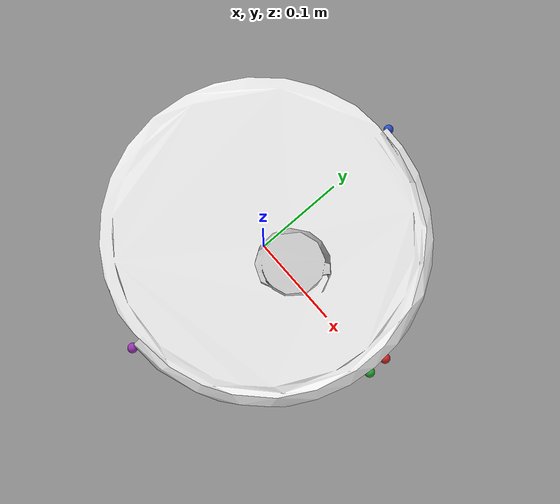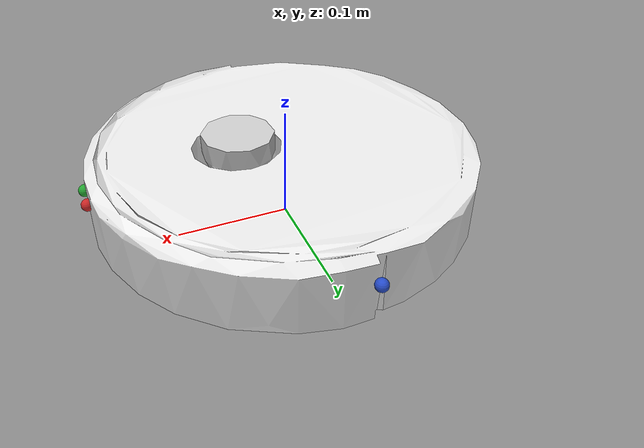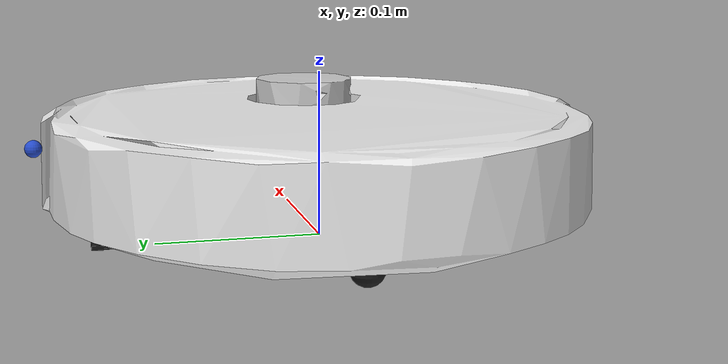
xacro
<?xml version="1.0"?>
<robot xmlns:controller="http://playerstage.sourceforge.net/gazebo/xmlschema/#controller" xmlns:interface="http://playerstage.sourceforge.net/gazebo/xmlschema/#interface" xmlns:sensor="http://playerstage.sourceforge.net/gazebo/xmlschema/#sensor" xmlns:xacro="http://ros.org/wiki/xacro" name="rvc">
  <xacro:property name="PI" value="3.14159" />
  <xacro:property name="body_radius" value="0.17" />
  <xacro:property name="body_height" value="0.07" />
  <xacro:property name="body_to_ground" value="0.01" />
  <xacro:property name="wheel_radius" value="0.033" />
  <xacro:property name="wheel_width" value="0.016" />
  <xacro:property name="wheel_L" value="0.26" />
  <xacro:macro name="cylinder_inertial" params="mass radius length heart">
    <inertial>
      <origin xyz="${heart}" rpy="0 0 0" />
      <mass value="${mass}" />
      <inertia ixx="${mass * (3 * radius * radius + length * length) / 12}" ixy="0.0" ixz="0.0" iyy="${mass * (3 * radius * radius + length * length) / 12}" iyz="0.0" izz="${mass * radius * radius / 2}" />
    </inertial>
  </xacro:macro>

  <xacro:macro name="sphere_inertia" params="m r">
    <inertial>
      <mass value="${m}"/>
      <inertia ixx="${2*m*r*r/5}" ixy = "0" ixz = "0" iyy="${2*m*r*r/5}" iyz = "0" izz="${2*m*r*r/5}" />
    </inertial>
  </xacro:macro>

  <xacro:macro name="wheel" params="prefix reflect">
    <link name="${prefix}_wheel">
      <collision name="${prefix}_wheel_collision">
        <origin xyz="0 0 0" rpy="0 1.570700 1.570700"/>
        <geometry>
          <cylinder radius="${wheel_radius}" length="${wheel_width}" />
        </geometry>
                <surface>
        <friction>
          <ode>
            <mu>1</mu>
            <mu2>0</mu2>
            <fdir1>0 1.0 0</fdir1>
            <implicit_spring_damper>true</implicit_spring_damper>
          </ode>
        </friction>
      </surface>
      </collision>
      <visual>
        <origin xyz="0 0 0" rpy="0 1.570700 1.570700" />
        <geometry>
          <mesh filename="package://sweeper_description/meshes/RobotWheel.dae" />
        </geometry>
      </visual>
      <xacro:cylinder_inertial mass="0.2" radius="${wheel_radius}" length="${wheel_width}" heart="0 0 0" />

    </link>
    <joint name="${prefix}_wheel_joint" type="continuous">
      <parent link="base_link"/>
      <child link="${prefix}_wheel"/>
      <axis xyz="0 1 0" rpy="0 0 0"/>
      <origin xyz="0 ${reflect * wheel_L / 2} ${wheel_radius}" rpy="0 0 0"/>
    </joint>

    <transmission name="${prefix}_wheel_trans">
      <type>transmission_interface/SimpleTransmission</type>
      <actuator name="${prefix}_wheel_motor">
        <mechanicalReduction>1</mechanicalReduction>
      </actuator>
      <joint name="${prefix}_wheel_joint">
        <hardwareInterface>hardware_interface/VelocityJointInterface</hardwareInterface>
      </joint>
    </transmission>

    <gazebo reference="${prefix}_wheel">
      <mu1>800.0</mu1>
      <mu2>400.0</mu2>
      <kp>10000000.0</kp>
      <kd>10.0</kd>
      <fdir1>1 0 0</fdir1>
      <maxVel>1.0</maxVel>
      <minDepth>0.00</minDepth>
      <material>Gazebo/Black</material>
    </gazebo>

  </xacro:macro>
  <link name="base_link"></link>
  <link name="body">
    <visual>
      <origin xyz="0 0 0" rpy="0 0 0" />
      <geometry>
        <mesh filename="package://sweeper_description/meshes/RobotBody.dae" />
      </geometry>
      <material name="white" />
    </visual>
    <collision name="boby_collision">
      <origin xyz="0 0 0" rpy="0 0 0" />
      <geometry>
        <cylinder length="${body_height}" radius="${body_radius}" />
      </geometry>
    </collision>

    <xacro:cylinder_inertial mass="0.4" radius="${body_radius}" length="${body_height}" heart="0 0 0"/>
  </link>

  <joint name="body_to_base" type="fixed">
    <axis rpy="0 0 0" xyz="0 0 0" />
    <parent link="base_link" />
    <child link="body" />
    <origin xyz="0 0 ${body_to_ground + body_height / 2}" rpy="0 0 0" />
  </joint>

  <gazebo reference="body">
    <sensor name="main_bumper" type="contact">
      <contact>
        <collision>base_link_fixed_joint_lump__boby_collision_collision</collision>
      </contact>
      <plugin name="gazebo_ros_bumper_controller" filename="libgazebo_ros_bumper.so">
        <selfCollide>true</selfCollide>
        <alwaysOn>true</alwaysOn>
        <updateRate>20.0</updateRate>
        <bumperTopicName>/bumper</bumperTopicName>
        <frameName>base_link</frameName>
      </plugin>
    </sensor>
    <material>Gazebo/White</material>
  </gazebo>

  <link name="front_omni">
    <xacro:sphere_inertia m="0.1" r="${body_to_ground}"/>
    <visual>
      <origin xyz="0 0 0" rpy="0 0 0" />
      <geometry>
        <sphere radius="${body_to_ground}"/>
      </geometry>
    </visual>
    <collision name="front_omniwheel">
      <origin xyz="0 0 0" rpy="0 0 0" />
      <geometry>
        <sphere radius="${body_to_ground}"/>
      </geometry>
    </collision>
  </link>
  <joint name="front_omni_to_base" type="continuous">
    <parent link="body"/>
    <child link="front_omni"/>
    <origin xyz="0.11 0 -${body_to_ground+body_height/2-body_to_ground}" rpy="0 0 0"/>
    <axis xyz="0 1 0" />
  </joint>
  <gazebo reference="front_omni">
    <mu1>0.0</mu1>
    <mu2>0.0</mu2>
    <kp>10000000.0</kp>
    <kd>10.0</kd>
    <fdir1>1 0 0</fdir1>
    <maxVel>1.0</maxVel>
    <minDepth>0.00</minDepth>
    <turnGravityOff>false</turnGravityOff>
    <material>Gazebo/Black</material>
  </gazebo>
  <link name="back_omni">
    <xacro:sphere_inertia m="0.1" r="${body_to_ground}"/>
    <visual>
      <origin xyz="0 0 0" rpy="0 0 0" />
      <geometry>
        <sphere radius="${body_to_ground}"/>
      </geometry>
    </visual>
    <collision name="back_omniwheel">
      <origin xyz="0 0 0" rpy="0 0 0" />
      <geometry>
        <sphere radius="${body_to_ground}"/>
      </geometry>
    </collision>
  </link>
  <joint name="back_omni_to_base" type="continuous">
    <parent link="body"/>
    <child link="back_omni"/>
    <origin xyz="-0.11 0 -${body_to_ground+body_height/2-body_to_ground}" rpy="0 0 0"/>
    <axis xyz="0 1 0" />
  </joint>
  <gazebo reference="back_omni">
    <mu1>0.0</mu1>
    <mu2>0.0</mu2>
    <kp>10000000.0</kp>
    <kd>10.0</kd>
    <fdir1>1 0 0</fdir1>
    <maxVel>1.0</maxVel>
    <minDepth>0.00</minDepth>
    <turnGravityOff>false</turnGravityOff>
    <material>Gazebo/Black</material>
  </gazebo>

  <xacro:macro name="ir_recevier" params="prefix angle color">
    <link name="ir_recevier_${prefix}">
      <visual>
        <origin xyz="0 0 0" rpy="0 0 0" />
        <geometry>
          <sphere radius="0.005" />
        </geometry>
      </visual>
    </link>
    <joint name="ir_recevier_${prefix}_joint" type="fixed">
      <axis rpy="0 0 0" xyz="0 0 0" />
      <parent link="body" />
      <child link="ir_recevier_${prefix}" />
      <origin xyz="${(body_radius-0.003) * cos(angle)} ${(body_radius-0.003) * sin(angle)} 0.015" rpy="0 0 ${angle}" />
    </joint>
    <gazebo reference="ir_recevier_${prefix}">
      <material>${color}</material>
    </gazebo>
  </xacro:macro>

  <xacro:macro name="scan1d" params="prefix angle">
    <link name="scan1d_${prefix}">
    </link>
    <joint name="scan1d_${prefix}_joint" type="fixed">
      <parent link="base_link" />
      <child link="scan1d_${prefix}" />
      <origin xyz="${0.164 * cos(angle)} ${0.164 * sin(angle)} 0.06" rpy="0 ${PI*14/180} ${angle}"/>
    </joint>
  </xacro:macro>

  <xacro:macro name="ir_sensor" params="prefix angle">
    <link name="ir_${prefix}" />
    <joint name="ir_${prefix}_joint" type="fixed">
      <axis rpy="0 0 0" xyz="0 0 0" />
      <parent link="body" />
      <child link="ir_${prefix}" />
      <origin xyz="${body_radius * cos(angle)} ${body_radius * sin(angle)} 0" rpy="0 0 ${angle}" />
    </joint>

    <gazebo reference="ir_${prefix}">
      <sensor type="ray" name="ir_${prefix}_sensor">
        <pose>0 0 0 0 0 0</pose>
        <visualize>true</visualize>
        <update_rate>20</update_rate>
        <ray>
          <scan>
            <horizontal>
              <samples>10</samples>
              <resolution>1</resolution>
              <min_angle>-${PI / 36}</min_angle>
              <max_angle>${PI / 36}</max_angle>
            </horizontal>
          </scan>
          <range>
            <min>0.01</min>
            <max>0.26</max>
            <resolution>0.01</resolution>
          </range>
        </ray>
        <plugin name="gazebo_ros_ir_${prefix}_controller" filename="libgazebo_ros_range.so">
          <gaussianNoise>0.005</gaussianNoise>
          <alwaysOn>true</alwaysOn>
          <updateRate>20</updateRate>
          <topicName>/ir/${prefix}</topicName>
          <frameName>base_link</frameName>
          <radiation>ir</radiation>
          <fov>${PI/18}</fov>
        </plugin>
      </sensor>
    </gazebo>
  </xacro:macro>

  <xacro:macro name="ir_wide_sensor" params="prefix angle">
    <link name="ir_${prefix}" />
    <joint name="ir_${prefix}_joint" type="fixed">
      <axis rpy="0 0 0" xyz="0 0 0" />
      <parent link="body" />
      <child link="ir_${prefix}" />
      <origin xyz="${(body_radius-0.05) * cos(angle)} ${(body_radius-0.05) * sin(angle)} 0" rpy="0 0 ${angle}" />
    </joint>

    <gazebo reference="ir_${prefix}">
      <sensor type="ray" name="ir_${prefix}_sensor">
        <pose>0 0 0 0 0 0</pose>
        <visualize>true</visualize>
        <update_rate>20</update_rate>
        <ray>
          <scan>
            <horizontal>
              <samples>10</samples>
              <resolution>1</resolution>
              <min_angle>-${PI / 3}</min_angle>
              <max_angle>${PI / 3}</max_angle>
            </horizontal>
          </scan>
          <range>
            <min>0.08</min>
            <max>0.09</max>
            <resolution>0.01</resolution>
          </range>
        </ray>
        <plugin name="gazebo_ros_ir_${prefix}_controller" filename="libgazebo_ros_range.so">
          <gaussianNoise>0.005</gaussianNoise>
          <alwaysOn>true</alwaysOn>
          <updateRate>20</updateRate>
          <topicName>/ir/${prefix}</topicName>
          <frameName>base_link</frameName>
          <radiation>ir</radiation>
          <fov>${PI/18}</fov>
        </plugin>
      </sensor>
    </gazebo>
  </xacro:macro>

  <xacro:wheel prefix="left" reflect="1" />
  <xacro:wheel prefix="right" reflect="-1" />
  <xacro:ir_sensor prefix="left" angle="${PI/2}" />
  <xacro:ir_wide_sensor prefix="left_front" angle="${PI/4}" />
  <xacro:ir_wide_sensor prefix="front" angle="0" />
  <xacro:ir_wide_sensor prefix="right_front" angle="-${PI/4}" />
  <xacro:ir_sensor prefix="right" angle="-${PI/2}" />

  <xacro:ir_recevier prefix="fl" angle="0.06" color="Gazebo/Red" />
  <xacro:ir_recevier prefix="fr" angle="-0.06" color="Gazebo/Green" />
  <xacro:ir_recevier prefix="l" angle="${PI/2}" color="Gazebo/Blue" />
  <xacro:ir_recevier prefix="r" angle="${-PI/2}" color="Gazebo/Purple" />

  <xacro:scan1d prefix="left" angle="${PI*21/180}"/>
  <xacro:scan1d prefix="right" angle="${-PI*21/180}"/>

  <xacro:include filename="lidar.xacro" />
  <joint name="lidar_joint" type="fixed">
    <parent link="body" />
    <child link="lidar_link" />
    <origin xyz="0.043 0 ${body_height/2}" />
  </joint>

  <!--xacro:include filename="imu.xacro" /-->
  <link name="imu_link">
    <visual>
      <origin xyz="0 0 0" rpy="0 0 0" />
      <geometry>
        <cylinder length="0.001" radius="0.001" />
      </geometry>
      <material name="white" />
    </visual>
  </link>

  <joint name="imu_joint" type="fixed">
    <parent link="body" />
    <child link="imu_link" />
    <origin xyz="0 0 0" />
  </joint>

  <gazebo reference="imu_link">
    <gravity>true</gravity>
    <sensor name="imu_sensor" type="imu">
      <always_on>true</always_on>
      <update_rate>100</update_rate>
      <visualize>true</visualize>
      <topic>__default_topic__</topic>
      <plugin filename="libgazebo_ros_imu_sensor.so" name="imu_plugin">
        <topicName>/imu</topicName>
        <bodyName>imu_link</bodyName>
        <updateRateHZ>50.0</updateRateHZ>
        <gaussianNoise>0.0</gaussianNoise>
        <xyzOffset>0 0 0</xyzOffset>
        <rpyOffset>0 0 0</rpyOffset>
        <frameName>imu_link</frameName>
        <initialOrientationAsReference>false</initialOrientationAsReference>
      </plugin>
      <pose>0 0 0 0 0 0</pose>
    </sensor>
  </gazebo>

  <!-- Gazebo plugin for ROS Control -->
  <gazebo>
    <plugin name="gazebo_ros_control" filename="libgazebo_ros_control.so">
      <robotNamespace>/</robotNamespace>
      <legacyModeNS>true</legacyModeNS>
    </plugin>
  </gazebo>
</robot>

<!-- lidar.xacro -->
<robot xmlns:controller="http://playerstage.sourceforge.net/gazebo/xmlschema/#controller"
    xmlns:interface="http://playerstage.sourceforge.net/gazebo/xmlschema/#interface"
    xmlns:sensor="http://playerstage.sourceforge.net/gazebo/xmlschema/#sensor"
    xmlns:xacro="http://ros.org/wiki/xacro" name="lidar">
    <xacro:property name="PI" value="3.14159" />
    <xacro:property name="lidar_radius" value="0.029" />
    <xacro:property name="lidar_height" value="0.017" />
    <xacro:macro name="cylinder_inertial" params="mass radius length">
        <inertial>
            <mass value="${mass}"/>
            <inertia ixx="${mass * (3 * radius * radius + length * length) / 12}" ixy="0.0" ixz="0.0" iyy="${mass * (3 * radius * radius + length * length) / 12}" iyz="0.0" izz="${mass * radius * radius / 2}"/>
        </inertial>
    </xacro:macro>
    <link name="lidar_link">
        <collision name="collision">
            <origin xyz="0 0 0" rpy="0 0 0"/>
            <geometry>
                <cylinder radius="${lidar_radius}" length="${lidar_height}"/>
            </geometry>
        </collision>
        <visual name="laser_visual">
            <origin xyz="0 0 0" rpy="0 0 0"/>
            <geometry>
                <mesh filename="package://sweeper_description/meshes/RobotLidar.dae" />
            </geometry>
        </visual>
        <cylinder_inertial mass="0.2" radius="${lidar_radius}" length="${lidar_height}"/>
    </link>

    <link name="laser_link">
    </link>

    <joint name="laser_joint" type="fixed">
      <axis rpy="0 0 0" xyz="0 0 0"/>
      <parent link="lidar_link"/>
      <child link="laser_link"/>
      <origin xyz="0 0 0.005" rpy="0 0 0"/>
    </joint>

    <gazebo reference="laser_link">
        <sensor type="ray" name="eai_lidar">
            <pose>0 0 0 0 0 0</pose>
            <visualize>false</visualize>
            <update_rate>5</update_rate>
            <ray>
                <scan>
                    <horizontal>
                        <samples>360</samples>
                        <resolution>1</resolution>
                        <min_angle>0</min_angle>
                        <max_angle>${PI * 2}</max_angle>
                    </horizontal>
                </scan>
                <range>
                    <min>0.10</min>
                    <max>8.0</max>
                    <resolution>0.01</resolution>
                </range>
                <noise>
                    <type>gaussian</type>
                    <mean>0.0</mean>
                    <stddev>0.01</stddev>
                </noise>
            </ray>
            <plugin name="gazebo_ros_lidar_controller" filename="libgazebo_ros_laser.so">
                <topicName>/scan</topicName>
                <frameName>lidar_link</frameName>
            </plugin>
        </sensor>
    </gazebo>
</robot>
